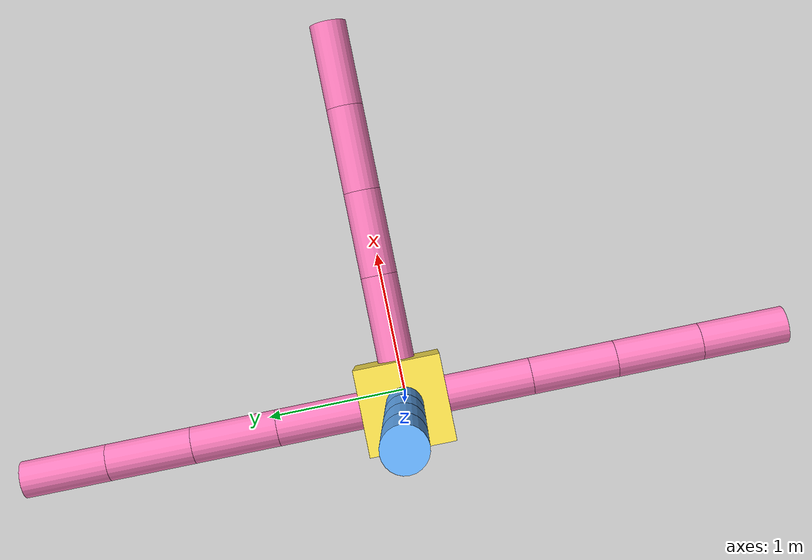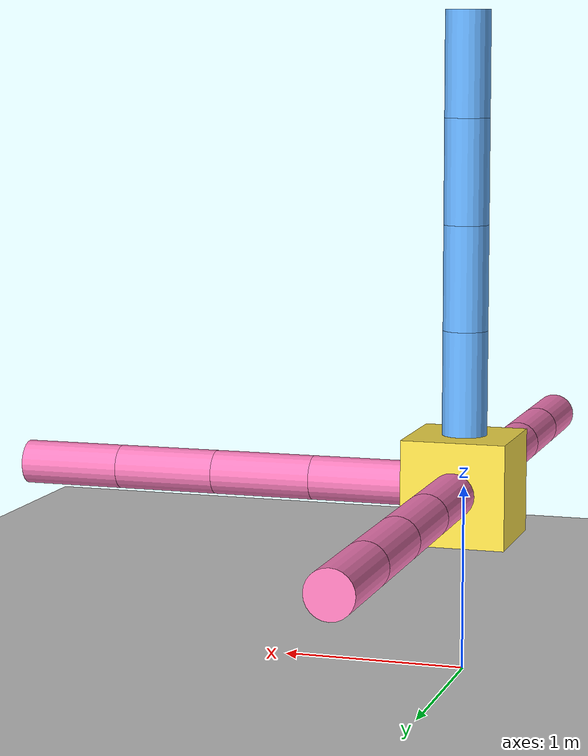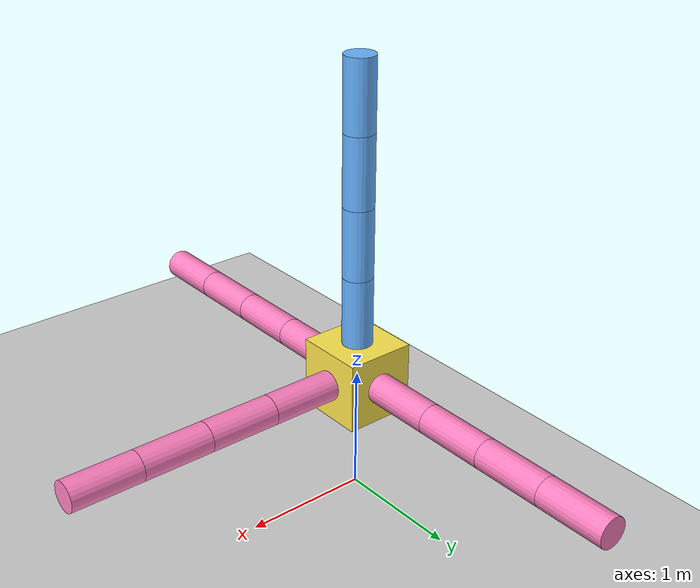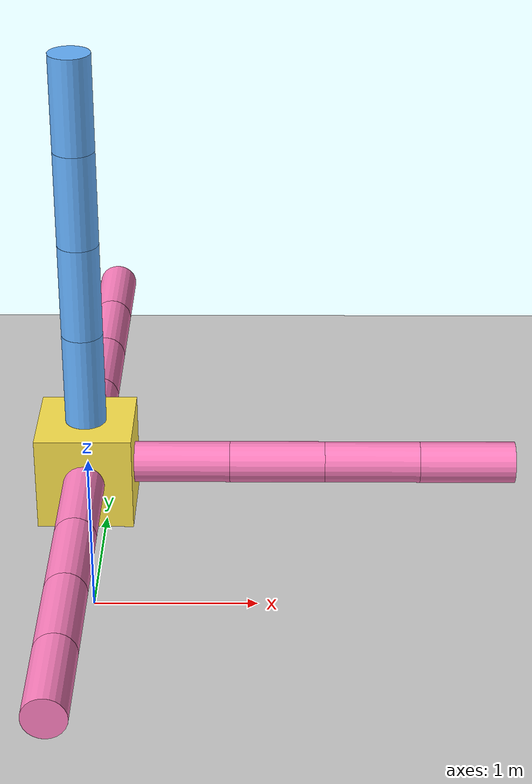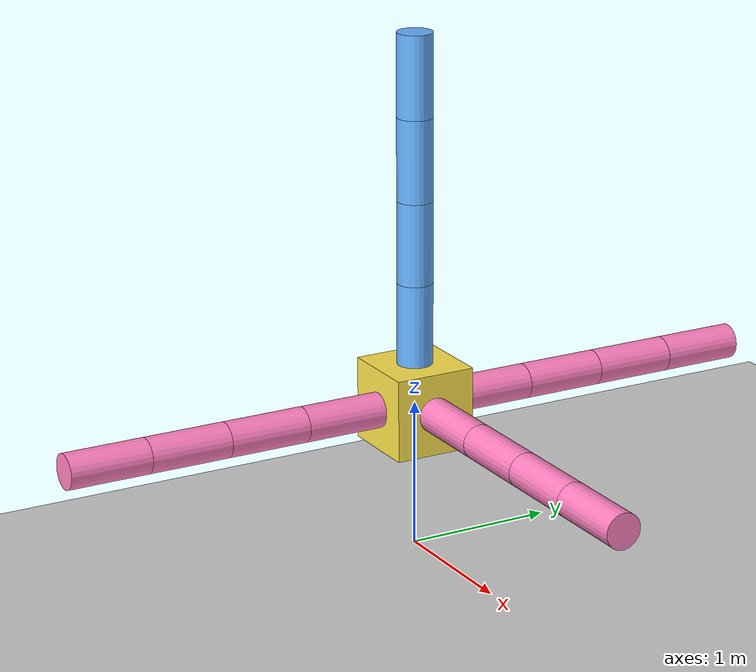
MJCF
<mujoco><option gravity="0 0 -30" /><worldbody><light diffuse="0.5 0.5 0.6" pos="0 2 3" dir="0 -0.5 -1" /><geom type="plane" size="5 5 0.1" rgba="0.8 0.8 0.8 1" /><body name="mainbody" pos="0 0 1" euler="0 90 0"><joint type="free" /><geom type="box" size="0.28 0.28 0.28" rgba="1.35 0.9 0.3 1.0" /><body name="leg0" pos="0 0 0.56" euler="180 0 0"><joint name="leg0_joint" type="hinge" pos="0 0 0.28" axis="0 90 0" range="-51 51" /><geom type="cylinder" size="0.12 0.28 0.28" rgba="1.4 0.5 0.75 1.0" /><body name="leg0_seg0" pos="0 0 -0.56" euler="0 0 0"><joint name="leg0_seg0_joint" type="hinge" pos="0 0 0.28" axis="0 90 0" range="-51 51" /><geom type="cylinder" size="0.12 0.28 0.28" rgba="1.4 0.5 0.75 1.0" /><body name="leg0_seg1" pos="0 0 -0.56" euler="0 0 0"><joint name="leg0_seg1_joint" type="hinge" pos="0 0 0.28" axis="0 90 0" range="-51 51" /><geom type="cylinder" size="0.12 0.28 0.28" rgba="1.4 0.5 0.75 1.0" /><body name="leg0_seg2" pos="0 0 -0.56" euler="0 0 0"><joint name="leg0_seg2_joint" type="hinge" pos="0 0 0.28" axis="0 90 0" range="-51 51" /><geom type="cylinder" size="0.12 0.28 0.28" rgba="1.4 0.5 0.75 1.0" /></body></body></body></body><body name="leg1" pos="0 -0.56 0" euler="-90 0 0"><joint name="leg1_joint" type="hinge" pos="0 0 0.28" axis="0 90 0" range="-76 76" /><geom type="cylinder" size="0.12 0.28 0.28" rgba="1.4 0.5 0.75 1.0" /><body name="leg1_seg0" pos="0 0 -0.56" euler="0 0 0"><joint name="leg1_seg0_joint" type="hinge" pos="0 0 0.28" axis="0 90 0" range="-76 76" /><geom type="cylinder" size="0.12 0.28 0.28" rgba="1.4 0.5 0.75 1.0" /><body name="leg1_seg1" pos="0 0 -0.56" euler="0 0 0"><joint name="leg1_seg1_joint" type="hinge" pos="0 0 0.28" axis="0 90 0" range="-76 76" /><geom type="cylinder" size="0.12 0.28 0.28" rgba="1.4 0.5 0.75 1.0" /><body name="leg1_seg2" pos="0 0 -0.56" euler="0 0 0"><joint name="leg1_seg2_joint" type="hinge" pos="0 0 0.28" axis="0 90 0" range="-76 76" /><geom type="cylinder" size="0.12 0.28 0.28" rgba="1.4 0.5 0.75 1.0" /></body></body></body></body><body name="leg2" pos="0 0.56 0" euler="90 0 0"><joint name="leg2_joint" type="hinge" pos="0 0 0.28" axis="0 90 0" range="-73 73" /><geom type="cylinder" size="0.12 0.28 0.28" rgba="1.4 0.5 0.75 1.0" /><body name="leg2_seg0" pos="0 0 -0.56" euler="0 0 0"><joint name="leg2_seg0_joint" type="hinge" pos="0 0 0.28" axis="0 90 0" range="-73 73" /><geom type="cylinder" size="0.12 0.28 0.28" rgba="1.4 0.5 0.75 1.0" /><body name="leg2_seg1" pos="0 0 -0.56" euler="0 0 0"><joint name="leg2_seg1_joint" type="hinge" pos="0 0 0.28" axis="0 90 0" range="-73 73" /><geom type="cylinder" size="0.12 0.28 0.28" rgba="1.4 0.5 0.75 1.0" /><body name="leg2_seg2" pos="0 0 -0.56" euler="0 0 0"><joint name="leg2_seg2_joint" type="hinge" pos="0 0 0.28" axis="0 90 0" range="-73 73" /><geom type="cylinder" size="0.12 0.28 0.28" rgba="1.4 0.5 0.75 1.0" /></body></body></body></body><body name="leg3" pos="0 0 0.56" euler="180 0 0"><joint name="leg3_joint" type="hinge" pos="0 0 0.28" axis="0 90 0" range="-42 42" /><geom type="cylinder" size="0.12 0.28 0.28" rgba="1.35 0.9 0.3 1.0" /><body name="leg3_seg0" pos="0 0 -0.56" euler="0 0 0"><joint name="leg3_seg0_joint" type="hinge" pos="0 0 0.28" axis="0 90 0" range="-42 42" /><geom type="cylinder" size="0.12 0.28 0.28" rgba="1.35 0.9 0.3 1.0" /><body name="leg3_seg1" pos="0 0 -0.56" euler="0 0 0"><joint name="leg3_seg1_joint" type="hinge" pos="0 0 0.28" axis="0 90 0" range="-42 42" /><geom type="cylinder" size="0.12 0.28 0.28" rgba="1.35 0.9 0.3 1.0" /><body name="leg3_seg2" pos="0 0 -0.56" euler="0 0 0"><joint name="leg3_seg2_joint" type="hinge" pos="0 0 0.28" axis="0 90 0" range="-42 42" /><geom type="cylinder" size="0.12 0.28 0.28" rgba="1.35 0.9 0.3 1.0" /></body></body></body></body><body name="leg4" pos="0 0 0.56" euler="180 0 0"><joint name="leg4_joint" type="hinge" pos="0 0 0.28" axis="0 90 0" range="-64 64" /><geom type="cylinder" size="0.12 0.28 0.28" rgba="0.4 0.7 1.5 1.0" /><body name="leg4_seg0" pos="0 0 -0.56" euler="0 0 0"><joint name="leg4_seg0_joint" type="hinge" pos="0 0 0.28" axis="0 90 0" range="-64 64" /><geom type="cylinder" size="0.12 0.28 0.28" rgba="0.4 0.7 1.5 1.0" /><body name="leg4_seg1" pos="0 0 -0.56" euler="0 0 0"><joint name="leg4_seg1_joint" type="hinge" pos="0 0 0.28" axis="0 90 0" range="-64 64" /><geom type="cylinder" size="0.12 0.28 0.28" rgba="0.4 0.7 1.5 1.0" /><body name="leg4_seg2" pos="0 0 -0.56" euler="0 0 0"><joint name="leg4_seg2_joint" type="hinge" pos="0 0 0.28" axis="0 90 0" range="-64 64" /><geom type="cylinder" size="0.12 0.28 0.28" rgba="0.4 0.7 1.5 1.0" /></body></body></body></body><body name="leg5" pos="0 0.56 0" euler="90 0 0"><joint name="leg5_joint" type="hinge" pos="0 0 0.28" axis="0 90 0" range="-77 77" /><geom type="cylinder" size="0.12 0.28 0.28" rgba="1.35 0.9 0.3 1.0" /><body name="leg5_seg0" pos="0 0 -0.56" euler="0 0 0"><joint name="leg5_seg0_joint" type="hinge" pos="0 0 0.28" axis="0 90 0" range="-77 77" /><geom type="cylinder" size="0.12 0.28 0.28" rgba="1.35 0.9 0.3 1.0" /><body name="leg5_seg1" pos="0 0 -0.56" euler="0 0 0"><joint name="leg5_seg1_joint" type="hinge" pos="0 0 0.28" axis="0 90 0" range="-77 77" /><geom type="cylinder" size="0.12 0.28 0.28" rgba="1.35 0.9 0.3 1.0" /><body name="leg5_seg2" pos="0 0 -0.56" euler="0 0 0"><joint name="leg5_seg2_joint" type="hinge" pos="0 0 0.28" axis="0 90 0" range="-77 77" /><geom type="cylinder" size="0.12 0.28 0.28" rgba="1.35 0.9 0.3 1.0" /></body></body></body></body><body name="leg6" pos="-0.56 0 0" euler="0 90 0"><joint name="leg6_joint" type="hinge" pos="0 0 0.28" axis="0 90 0" range="-57 57" /><geom type="cylinder" size="0.12 0.28 0.28" rgba="0.4 0.7 1.5 1.0" /><body name="leg6_seg0" pos="0 0 -0.56" euler="0 0 0"><joint name="leg6_seg0_joint" type="hinge" pos="0 0 0.28" axis="0 90 0" range="-57 57" /><geom type="cylinder" size="0.12 0.28 0.28" rgba="0.4 0.7 1.5 1.0" /><body name="leg6_seg1" pos="0 0 -0.56" euler="0 0 0"><joint name="leg6_seg1_joint" type="hinge" pos="0 0 0.28" axis="0 90 0" range="-57 57" /><geom type="cylinder" size="0.12 0.28 0.28" rgba="0.4 0.7 1.5 1.0" /><body name="leg6_seg2" pos="0 0 -0.56" euler="0 0 0"><joint name="leg6_seg2_joint" type="hinge" pos="0 0 0.28" axis="0 90 0" range="-57 57" /><geom type="cylinder" size="0.12 0.28 0.28" rgba="0.4 0.7 1.5 1.0" /></body></body></body></body><body name="leg7" pos="-0.56 0 0" euler="0 90 0"><joint name="leg7_joint" type="hinge" pos="0 0 0.28" axis="0 90 0" range="-37 37" /><geom type="cylinder" size="0.12 0.28 0.28" rgba="0.4 0.7 1.5 1.0" /><body name="leg7_seg0" pos="0 0 -0.56" euler="0 0 0"><joint name="leg7_seg0_joint" type="hinge" pos="0 0 0.28" axis="0 90 0" range="-37 37" /><geom type="cylinder" size="0.12 0.28 0.28" rgba="0.4 0.7 1.5 1.0" /><body name="leg7_seg1" pos="0 0 -0.56" euler="0 0 0"><joint name="leg7_seg1_joint" type="hinge" pos="0 0 0.28" axis="0 90 0" range="-37 37" /><geom type="cylinder" size="0.12 0.28 0.28" rgba="0.4 0.7 1.5 1.0" /><body name="leg7_seg2" pos="0 0 -0.56" euler="0 0 0"><joint name="leg7_seg2_joint" type="hinge" pos="0 0 0.28" axis="0 90 0" range="-37 37" /><geom type="cylinder" size="0.12 0.28 0.28" rgba="0.4 0.7 1.5 1.0" /></body></body></body></body></body></worldbody><actuator><motor gear="84" joint="leg0_joint" /><motor gear="104" joint="leg1_joint" /><motor gear="101" joint="leg2_joint" /><motor gear="87" joint="leg3_joint" /><motor gear="108" joint="leg4_joint" /><motor gear="109" joint="leg5_joint" /><motor gear="103" joint="leg6_joint" /><motor gear="106" joint="leg7_joint" /></actuator></mujoco>
